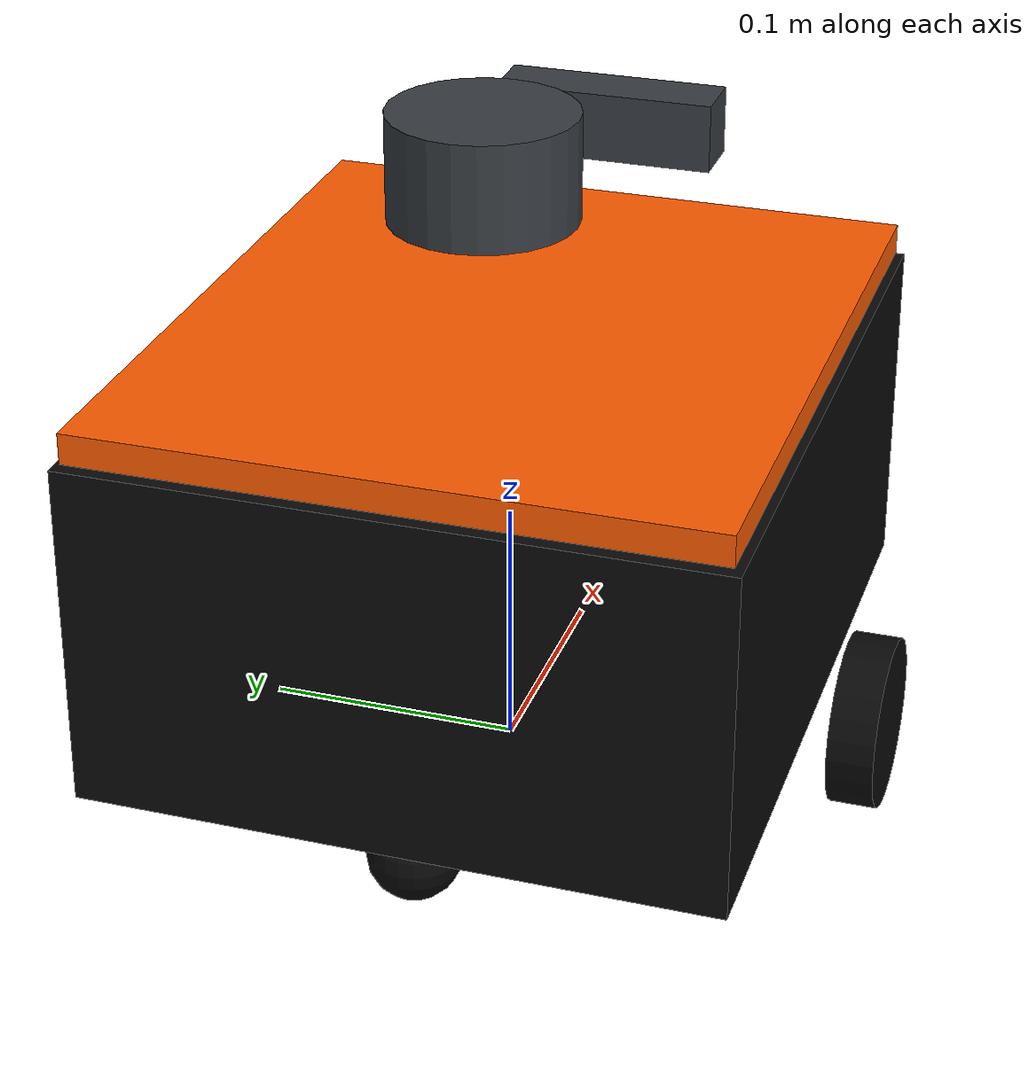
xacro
<?xml version="1.0"?>
<robot xmlns:xacro="http://www.ros.org/wiki/xacro" name="turtlebot3_waffle_pi">
  <xacro:property name="wheel_radius" value="0.033"/>
  <xacro:property name="wheel_width" value="0.018"/>
  <xacro:property name="wheel_separation" value="0.287"/>

  <material name="tb3_black"><color rgba="0.035 0.035 0.035 1"/></material>
  <material name="tb3_orange"><color rgba="1.0 0.36 0.0 1"/></material>
  <material name="sensor_gray"><color rgba="0.22 0.24 0.26 1"/></material>

  <link name="base_footprint"/>

  <link name="base_link">
    <visual>
      <origin xyz="0 0 0"/>
      <geometry><box size="0.281 0.246 0.135"/></geometry>
      <material name="tb3_black"/>
    </visual>
    <visual>
      <origin xyz="0 0 0.075"/>
      <geometry><box size="0.275 0.240 0.012"/></geometry>
      <material name="tb3_orange"/>
    </visual>
    <collision>
      <geometry><box size="0.281 0.246 0.135"/></geometry>
    </collision>
    <inertial>
      <mass value="1.45"/>
      <inertia ixx="0.0096" ixy="0" ixz="0" iyy="0.0118" iyz="0" izz="0.0171"/>
    </inertial>
  </link>
  <joint name="base_footprint_joint" type="fixed">
    <parent link="base_footprint"/>
    <child link="base_link"/>
    <origin xyz="0 0 0.100" rpy="0 0 0"/>
  </joint>

  <xacro:macro name="drive_wheel" params="side y">
    <link name="wheel_${side}_link">
      <visual>
        <origin rpy="1.570796 0 0"/>
        <geometry><cylinder radius="${wheel_radius}" length="${wheel_width}"/></geometry>
        <material name="tb3_black"/>
      </visual>
      <collision>
        <origin rpy="1.570796 0 0"/>
        <geometry><cylinder radius="${wheel_radius}" length="${wheel_width}"/></geometry>
      </collision>
      <inertial>
        <mass value="0.08"/>
        <inertia ixx="0.000025" ixy="0" ixz="0" iyy="0.000045" iyz="0" izz="0.000025"/>
      </inertial>
    </link>
    <joint name="wheel_${side}_joint" type="continuous">
      <parent link="base_link"/>
      <child link="wheel_${side}_link"/>
      <origin xyz="0 ${y} -0.067" rpy="0 0 0"/>
      <axis xyz="0 1 0"/>
      <dynamics damping="0.02" friction="0.0"/>
    </joint>
  </xacro:macro>

  <xacro:drive_wheel side="left" y="0.1435"/>
  <xacro:drive_wheel side="right" y="-0.1435"/>

  <xacro:macro name="caster" params="name x">
    <link name="caster_${name}_link">
      <visual>
        <geometry><sphere radius="0.018"/></geometry>
        <material name="tb3_black"/>
      </visual>
      <collision><geometry><sphere radius="0.018"/></geometry></collision>
      <inertial>
        <mass value="0.02"/>
        <inertia ixx="0.000003" ixy="0" ixz="0" iyy="0.000003" iyz="0" izz="0.000003"/>
      </inertial>
    </link>
    <joint name="caster_${name}_joint" type="fixed">
      <parent link="base_link"/>
      <child link="caster_${name}_link"/>
      <origin xyz="${x} 0 -0.082"/>
    </joint>
  </xacro:macro>

  <xacro:caster name="front" x="0.115"/>
  <xacro:caster name="rear" x="-0.115"/>

  <link name="base_scan">
    <visual>
      <geometry><cylinder radius="0.035" length="0.040"/></geometry>
      <material name="sensor_gray"/>
    </visual>
    <inertial>
      <mass value="0.06"/>
      <inertia ixx="0.00004" ixy="0" ixz="0" iyy="0.00004" iyz="0" izz="0.00006"/>
    </inertial>
  </link>
  <joint name="base_scan_joint" type="fixed">
    <parent link="base_link"/>
    <child link="base_scan"/>
    <origin xyz="-0.032 0 0.155"/>
  </joint>

  <link name="camera_link">
    <visual>
      <geometry><box size="0.025 0.090 0.028"/></geometry>
      <material name="sensor_gray"/>
    </visual>
    <inertial>
      <mass value="0.05"/>
      <inertia ixx="0.00004" ixy="0" ixz="0" iyy="0.00001" iyz="0" izz="0.00004"/>
    </inertial>
  </link>
  <joint name="camera_joint" type="fixed">
    <parent link="base_link"/>
    <child link="camera_link"/>
    <origin xyz="0.133 0 0.115"/>
  </joint>

  <link name="camera_depth_optical_frame"/>
  <joint name="camera_depth_optical_joint" type="fixed">
    <parent link="camera_link"/>
    <child link="camera_depth_optical_frame"/>
    <origin xyz="0.013 0 0" rpy="-1.570796 0 -1.570796"/>
  </joint>

  <gazebo reference="base_link">
    <material>Gazebo/Black</material>
  </gazebo>
  <gazebo reference="wheel_left_link">
    <mu1>10.0</mu1><mu2>10.0</mu2><kp>1000000.0</kp><kd>100.0</kd>
    <material>Gazebo/Black</material>
  </gazebo>
  <gazebo reference="wheel_right_link">
    <mu1>10.0</mu1><mu2>10.0</mu2><kp>1000000.0</kp><kd>100.0</kd>
    <material>Gazebo/Black</material>
  </gazebo>
  <gazebo reference="caster_front_link">
    <mu1>0.01</mu1><mu2>0.01</mu2><material>Gazebo/Black</material>
  </gazebo>
  <gazebo reference="caster_rear_link">
    <mu1>0.01</mu1><mu2>0.01</mu2><material>Gazebo/Black</material>
  </gazebo>

  <gazebo>
    <plugin name="turtlebot3_differential_drive" filename="libgazebo_ros_diff_drive.so">
      <robotNamespace>/</robotNamespace>
      <updateRate>30</updateRate>
      <leftJoint>wheel_left_joint</leftJoint>
      <rightJoint>wheel_right_joint</rightJoint>
      <wheelSeparation>${wheel_separation}</wheelSeparation>
      <wheelDiameter>${2.0 * wheel_radius}</wheelDiameter>
      <wheelTorque>20</wheelTorque>
      <wheelAcceleration>1.0</wheelAcceleration>
      <commandTopic>cmd_vel</commandTopic>
      <odometryTopic>odom</odometryTopic>
      <odometryFrame>odom</odometryFrame>
      <odometrySource>world</odometrySource>
      <robotBaseFrame>base_footprint</robotBaseFrame>
      <publishOdomTF>true</publishOdomTF>
      <publishTf>true</publishTf>
      <publishWheelTF>false</publishWheelTF>
      <publishWheelJointState>true</publishWheelJointState>
      <legacyMode>false</legacyMode>
      <rosDebugLevel>na</rosDebugLevel>
    </plugin>
  </gazebo>

  <gazebo reference="base_scan">
    <sensor name="lds_01" type="ray">
      <pose>0 0 0 0 0 0</pose>
      <visualize>true</visualize>
      <update_rate>10</update_rate>
      <ray>
        <scan>
          <horizontal>
            <samples>360</samples><resolution>1</resolution>
            <min_angle>-3.141593</min_angle><max_angle>3.141593</max_angle>
          </horizontal>
        </scan>
        <range><min>0.12</min><max>8.0</max><resolution>0.015</resolution></range>
        <noise><type>gaussian</type><mean>0.0</mean><stddev>0.01</stddev></noise>
      </ray>
      <plugin name="turtlebot3_lidar" filename="libgazebo_ros_laser.so">
        <topicName>scan</topicName>
        <frameName>base_scan</frameName>
      </plugin>
    </sensor>
  </gazebo>

  <gazebo reference="camera_link">
    <sensor name="turtlebot3_rgbd" type="depth">
      <always_on>true</always_on>
      <update_rate>8</update_rate>
      <visualize>true</visualize>
      <camera>
        <horizontal_fov>1.0472</horizontal_fov>
        <image><width>320</width><height>240</height><format>R8G8B8</format></image>
        <depth_camera/>
        <clip><near>0.15</near><far>6.0</far></clip>
      </camera>
      <plugin name="turtlebot3_depth_camera" filename="libgazebo_ros_depth_camera.so">
        <baseline>0.20</baseline>
        <alwaysOn>true</alwaysOn>
        <updateRate>8.0</updateRate>
        <cameraName>camera</cameraName>
        <imageTopicName>rgb/image_raw</imageTopicName>
        <cameraInfoTopicName>rgb/camera_info</cameraInfoTopicName>
        <depthImageTopicName>depth/image_raw</depthImageTopicName>
        <depthImageCameraInfoTopicName>depth/camera_info</depthImageCameraInfoTopicName>
        <pointCloudTopicName>depth/points</pointCloudTopicName>
        <frameName>camera_depth_optical_frame</frameName>
        <pointCloudCutoff>0.20</pointCloudCutoff>
        <pointCloudCutoffMax>6.0</pointCloudCutoffMax>
        <hackBaseline>0.07</hackBaseline>
        <distortionK1>0.0</distortionK1>
        <distortionK2>0.0</distortionK2>
        <distortionK3>0.0</distortionK3>
        <distortionT1>0.0</distortionT1>
        <distortionT2>0.0</distortionT2>
        <CxPrime>0.0</CxPrime>
        <Cx>0.0</Cx>
        <Cy>0.0</Cy>
        <focalLength>0</focalLength>
      </plugin>
    </sensor>
  </gazebo>
</robot>
